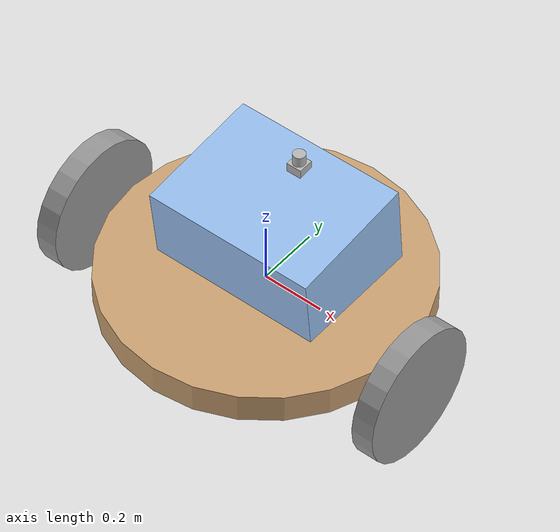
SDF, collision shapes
<?xml version='1.0'?>
<sdf version='1.7'>
  <model name='robot_draf'>
    <link name='caster_wheel'>
      <inertial>
        <mass>2</mass>
        <inertia>
          <ixx>0.00197836</ixx>
          <ixy>0</ixy>
          <ixz>0</ixz>
          <iyy>0.00197836</iyy>
          <iyz>0</iyz>
          <izz>0.00361478</izz>
        </inertia>
        <pose>0 0 0 0 -0 0</pose>
      </inertial>
      <pose>0.001456 0.474958 -0.113119 -3.13968 1.57079 -3.13968</pose>
      <self_collide>0</self_collide>
      <enable_wind>0</enable_wind>
      <kinematic>0</kinematic>
      <gravity>1</gravity>
      <visual name='visual'>
        <pose>0 0 0 0 -0 0</pose>
        <geometry>
          <cylinder>
            <radius>0.0601226</radius>
            <length>0.0320289</length>
          </cylinder>
        </geometry>
        <material>
          <lighting>1</lighting>
          <script>
            <uri>file://media/materials/scripts/gazebo.material</uri>
            <name>Gazebo/Grey</name>
          </script>
          <shader type='pixel'>
            <normal_map>__default__</normal_map>
          </shader>
          <ambient>0.3 0.3 0.3 1</ambient>
          <diffuse>0.7 0.7 0.7 1</diffuse>
          <specular>0.01 0.01 0.01 1</specular>
          <emissive>0 0 0 1</emissive>
        </material>
        <transparency>0</transparency>
        <cast_shadows>1</cast_shadows>
      </visual>
      <collision name='collision'>
        <laser_retro>0</laser_retro>
        <max_contacts>10</max_contacts>
        <pose>0 0 0 0 -0 0</pose>
        <geometry>
          <cylinder>
            <radius>0.060123</radius>
            <length>0.032029</length>
          </cylinder>
        </geometry>
        <surface>
          <friction>
            <ode>
              <mu>1</mu>
              <mu2>1</mu2>
              <fdir1>0 0 0</fdir1>
              <slip1>0</slip1>
              <slip2>0</slip2>
            </ode>
            <torsional>
              <coefficient>1</coefficient>
              <patch_radius>0</patch_radius>
              <surface_radius>0</surface_radius>
              <use_patch_radius>1</use_patch_radius>
              <ode>
                <slip>0</slip>
              </ode>
            </torsional>
          </friction>
          <bounce>
            <restitution_coefficient>0</restitution_coefficient>
            <threshold>1e+06</threshold>
          </bounce>
          <contact>
            <collide_without_contact>0</collide_without_contact>
            <collide_without_contact_bitmask>1</collide_without_contact_bitmask>
            <collide_bitmask>1</collide_bitmask>
            <ode>
              <soft_cfm>0</soft_cfm>
              <soft_erp>0.2</soft_erp>
              <kp>1e+13</kp>
              <kd>1</kd>
              <max_vel>0.01</max_vel>
              <min_depth>0</min_depth>
            </ode>
            <bullet>
              <split_impulse>1</split_impulse>
              <split_impulse_penetration_threshold>-0.01</split_impulse_penetration_threshold>
              <soft_cfm>0</soft_cfm>
              <soft_erp>0.2</soft_erp>
              <kp>1e+13</kp>
              <kd>1</kd>
            </bullet>
          </contact>
        </surface>
      </collision>
    </link>
    <link name='chassis'>
      <inertial>
        <mass>20</mass>
        <inertia>
          <ixx>1.26558</ixx>
          <ixy>0</ixy>
          <ixz>0</ixz>
          <iyy>1.26558</iyy>
          <iyz>0</iyz>
          <izz>2.5</izz>
        </inertia>
        <pose>0 0 0 0 -0 0</pose>
      </inertial>
      <pose>0 0 0 0 -0 0</pose>
      <gravity>1</gravity>
      <self_collide>0</self_collide>
      <kinematic>0</kinematic>
      <enable_wind>0</enable_wind>
      <visual name='visual'>
        <pose>0 0 0 0 -0 0</pose>
        <geometry>
          <cylinder>
            <radius>0.5</radius>
            <length>0.0966706</length>
          </cylinder>
        </geometry>
        <material>
          <lighting>1</lighting>
          <script>
            <uri>file://media/materials/scripts/gazebo.material</uri>
            <name>Gazebo/Grey</name>
          </script>
          <shader type='pixel'>
            <normal_map>__default__</normal_map>
          </shader>
          <ambient>0.8 0.64 0.45 1</ambient>
          <diffuse>0.7 0.7 0.7 1</diffuse>
          <specular>0.01 0.01 0.01 1</specular>
          <emissive>0 0 0 1</emissive>
        </material>
        <transparency>0</transparency>
        <cast_shadows>1</cast_shadows>
      </visual>
      <collision name='collision'>
        <laser_retro>0</laser_retro>
        <max_contacts>10</max_contacts>
        <pose>0 0 0 0 -0 0</pose>
        <geometry>
          <cylinder>
            <radius>0.5</radius>
            <length>0.096671</length>
          </cylinder>
        </geometry>
        <surface>
          <friction>
            <ode>
              <mu>1</mu>
              <mu2>1</mu2>
              <fdir1>0 0 0</fdir1>
              <slip1>0</slip1>
              <slip2>0</slip2>
            </ode>
            <torsional>
              <coefficient>1</coefficient>
              <patch_radius>0</patch_radius>
              <surface_radius>0</surface_radius>
              <use_patch_radius>1</use_patch_radius>
              <ode>
                <slip>0</slip>
              </ode>
            </torsional>
          </friction>
          <bounce>
            <restitution_coefficient>0</restitution_coefficient>
            <threshold>1e+06</threshold>
          </bounce>
          <contact>
            <collide_without_contact>0</collide_without_contact>
            <collide_without_contact_bitmask>1</collide_without_contact_bitmask>
            <collide_bitmask>1</collide_bitmask>
            <ode>
              <soft_cfm>0</soft_cfm>
              <soft_erp>0.2</soft_erp>
              <kp>1e+13</kp>
              <kd>1</kd>
              <max_vel>0.01</max_vel>
              <min_depth>0</min_depth>
            </ode>
            <bullet>
              <split_impulse>1</split_impulse>
              <split_impulse_penetration_threshold>-0.01</split_impulse_penetration_threshold>
              <soft_cfm>0</soft_cfm>
              <soft_erp>0.2</soft_erp>
              <kp>1e+13</kp>
              <kd>1</kd>
            </bullet>
          </contact>
        </surface>
      </collision>
    </link>
    <link name='left_wheel'>
      <inertial>
        <mass>1.5</mass>
        <inertia>
          <ixx>0.0181364</ixx>
          <ixy>0</ixy>
          <ixz>0</ixz>
          <iyy>0.0181364</iyy>
          <iyz>0</iyz>
          <izz>0.0349969</izz>
        </inertia>
        <pose>0 0 0 0 -0 0</pose>
      </inertial>
      <pose>-0.58 -0.08 0 -3.13968 1.57079 -3.13968</pose>
      <self_collide>0</self_collide>
      <enable_wind>0</enable_wind>
      <kinematic>0</kinematic>
      <gravity>1</gravity>
      <visual name='visual'>
        <pose>0 0 0 0 -0 0</pose>
        <geometry>
          <cylinder>
            <radius>0.216015</radius>
            <length>0.071441</length>
          </cylinder>
        </geometry>
        <material>
          <lighting>1</lighting>
          <script>
            <uri>file://media/materials/scripts/gazebo.material</uri>
            <name>Gazebo/Grey</name>
          </script>
          <shader type='pixel'>
            <normal_map>__default__</normal_map>
          </shader>
          <ambient>0.3 0.3 0.3 1</ambient>
          <diffuse>0.7 0.7 0.7 1</diffuse>
          <specular>0.01 0.01 0.01 1</specular>
          <emissive>0 0 0 1</emissive>
        </material>
        <transparency>0</transparency>
        <cast_shadows>1</cast_shadows>
      </visual>
      <collision name='collision'>
        <laser_retro>0</laser_retro>
        <max_contacts>10</max_contacts>
        <pose>0 0 0 0 -0 0</pose>
        <geometry>
          <cylinder>
            <radius>0.216015</radius>
            <length>0.071441</length>
          </cylinder>
        </geometry>
        <surface>
          <friction>
            <ode>
              <mu>1</mu>
              <mu2>1</mu2>
              <fdir1>0 0 0</fdir1>
              <slip1>0</slip1>
              <slip2>0</slip2>
            </ode>
            <torsional>
              <coefficient>1</coefficient>
              <patch_radius>0</patch_radius>
              <surface_radius>0</surface_radius>
              <use_patch_radius>1</use_patch_radius>
              <ode>
                <slip>0</slip>
              </ode>
            </torsional>
          </friction>
          <bounce>
            <restitution_coefficient>0</restitution_coefficient>
            <threshold>1e+06</threshold>
          </bounce>
          <contact>
            <collide_without_contact>0</collide_without_contact>
            <collide_without_contact_bitmask>1</collide_without_contact_bitmask>
            <collide_bitmask>1</collide_bitmask>
            <ode>
              <soft_cfm>0</soft_cfm>
              <soft_erp>0.2</soft_erp>
              <kp>1e+13</kp>
              <kd>1</kd>
              <max_vel>0.01</max_vel>
              <min_depth>0</min_depth>
            </ode>
            <bullet>
              <split_impulse>1</split_impulse>
              <split_impulse_penetration_threshold>-0.01</split_impulse_penetration_threshold>
              <soft_cfm>0</soft_cfm>
              <soft_erp>0.2</soft_erp>
              <kp>1e+13</kp>
              <kd>1</kd>
            </bullet>
          </contact>
        </surface>
      </collision>
    </link>
    <link name='link_0'>
      <inertial>
        <mass>0.0730977</mass>
        <inertia>
          <ixx>0.00165817</ixx>
          <ixy>0</ixy>
          <ixz>0</ixz>
          <iyy>0.002517</iyy>
          <iyz>0</iyz>
          <izz>0.00299551</izz>
        </inertia>
        <pose>0 0 0 0 -0 0</pose>
      </inertial>
      <pose>0 0.05 0.16 0.105797 -0.000159 0.001472</pose>
      <self_collide>0</self_collide>
      <enable_wind>0</enable_wind>
      <kinematic>0</kinematic>
      <gravity>1</gravity>
      <visual name='visual'>
        <pose>0 0 0 0 -0 0</pose>
        <geometry>
          <box>
            <size>0.562469 0.418787 0.311174</size>
          </box>
        </geometry>
        <material>
          <lighting>1</lighting>
          <script>
            <uri>file://media/materials/scripts/gazebo.material</uri>
            <name>Gazebo/Grey</name>
          </script>
          <shader type='pixel'>
            <normal_map>__default__</normal_map>
          </shader>
          <emissive>0.6 0.757 0.945 1</emissive>
          <ambient>0.6 0.757 0.945 1</ambient>
          <diffuse>0.6 0.757 0.945 1</diffuse>
          <specular>0.6 0.757 0.945 1</specular>
        </material>
        <transparency>0</transparency>
        <cast_shadows>1</cast_shadows>
      </visual>
      <collision name='collision'>
        <laser_retro>0</laser_retro>
        <max_contacts>10</max_contacts>
        <pose>0 0 0 0 -0 0</pose>
        <geometry>
          <box>
            <size>0.562469 0.418787 0.311174</size>
          </box>
        </geometry>
        <surface>
          <friction>
            <ode>
              <mu>1</mu>
              <mu2>1</mu2>
              <fdir1>0 0 0</fdir1>
              <slip1>0</slip1>
              <slip2>0</slip2>
            </ode>
            <torsional>
              <coefficient>1</coefficient>
              <patch_radius>0</patch_radius>
              <surface_radius>0</surface_radius>
              <use_patch_radius>1</use_patch_radius>
              <ode>
                <slip>0</slip>
              </ode>
            </torsional>
          </friction>
          <bounce>
            <restitution_coefficient>0</restitution_coefficient>
            <threshold>1e+06</threshold>
          </bounce>
          <contact>
            <collide_without_contact>0</collide_without_contact>
            <collide_without_contact_bitmask>1</collide_without_contact_bitmask>
            <collide_bitmask>1</collide_bitmask>
            <ode>
              <soft_cfm>0</soft_cfm>
              <soft_erp>0.2</soft_erp>
              <kp>1e+13</kp>
              <kd>1</kd>
              <max_vel>0.01</max_vel>
              <min_depth>0</min_depth>
            </ode>
            <bullet>
              <split_impulse>1</split_impulse>
              <split_impulse_penetration_threshold>-0.01</split_impulse_penetration_threshold>
              <soft_cfm>0</soft_cfm>
              <soft_erp>0.2</soft_erp>
              <kp>1e+13</kp>
              <kd>1</kd>
            </bullet>
          </contact>
        </surface>
      </collision>
    </link>
    <link name='right_wheel'>
      <inertial>
        <mass>1.5</mass>
        <inertia>
          <ixx>0.0181364</ixx>
          <ixy>0</ixy>
          <ixz>0</ixz>
          <iyy>0.0181364</iyy>
          <iyz>0</iyz>
          <izz>0.0349969</izz>
        </inertia>
        <pose>0 0 0 0 -0 0</pose>
      </inertial>
      <pose>0.58 -0.08 -0 -3.13968 1.57079 -3.13968</pose>
      <self_collide>0</self_collide>
      <enable_wind>0</enable_wind>
      <kinematic>0</kinematic>
      <gravity>1</gravity>
      <visual name='visual'>
        <pose>0 0 0 0 -0 0</pose>
        <geometry>
          <cylinder>
            <radius>0.216015</radius>
            <length>0.071441</length>
          </cylinder>
        </geometry>
        <material>
          <lighting>1</lighting>
          <script>
            <uri>file://media/materials/scripts/gazebo.material</uri>
            <name>Gazebo/Grey</name>
          </script>
          <shader type='pixel'>
            <normal_map>__default__</normal_map>
          </shader>
          <ambient>0.3 0.3 0.3 1</ambient>
          <diffuse>0.7 0.7 0.7 1</diffuse>
          <specular>0.01 0.01 0.01 1</specular>
          <emissive>0 0 0 1</emissive>
        </material>
        <transparency>0</transparency>
        <cast_shadows>1</cast_shadows>
      </visual>
      <collision name='collision'>
        <laser_retro>0</laser_retro>
        <max_contacts>10</max_contacts>
        <pose>0 0 0 0 -0 0</pose>
        <geometry>
          <cylinder>
            <radius>0.216015</radius>
            <length>0.071441</length>
          </cylinder>
        </geometry>
        <surface>
          <friction>
            <ode>
              <mu>1</mu>
              <mu2>1</mu2>
              <fdir1>0 0 0</fdir1>
              <slip1>0</slip1>
              <slip2>0</slip2>
            </ode>
            <torsional>
              <coefficient>1</coefficient>
              <patch_radius>0</patch_radius>
              <surface_radius>0</surface_radius>
              <use_patch_radius>1</use_patch_radius>
              <ode>
                <slip>0</slip>
              </ode>
            </torsional>
          </friction>
          <bounce>
            <restitution_coefficient>0</restitution_coefficient>
            <threshold>1e+06</threshold>
          </bounce>
          <contact>
            <collide_without_contact>0</collide_without_contact>
            <collide_without_contact_bitmask>1</collide_without_contact_bitmask>
            <collide_bitmask>1</collide_bitmask>
            <ode>
              <soft_cfm>0</soft_cfm>
              <soft_erp>0.2</soft_erp>
              <kp>1e+13</kp>
              <kd>1</kd>
              <max_vel>0.01</max_vel>
              <min_depth>0</min_depth>
            </ode>
            <bullet>
              <split_impulse>1</split_impulse>
              <split_impulse_penetration_threshold>-0.01</split_impulse_penetration_threshold>
              <soft_cfm>0</soft_cfm>
              <soft_erp>0.2</soft_erp>
              <kp>1e+13</kp>
              <kd>1</kd>
            </bullet>
          </contact>
        </surface>
      </collision>
    </link>
    <model name='lidar_2d_0'>
      <link name='laser_frame'>
        <pose>0 0 0 0 -0 0</pose>
        <inertial>
          <pose>0 0 0.035003 0 -0 0</pose>
          <mass>0.13</mass>
          <inertia>
            <ixx>8.01874e-05</ixx>
            <ixy>0</ixy>
            <ixz>0</ixz>
            <iyy>8.01874e-05</iyy>
            <iyz>0</iyz>
            <izz>5.41897e-05</izz>
          </inertia>
        </inertial>
        <sensor name='laser' type='ray'>
          <pose>0 0 0.052505 0 -0 0</pose>
          <ray>
            <scan>
              <horizontal>
                <samples>540</samples>
                <resolution>1</resolution>
                <min_angle>-2.3562</min_angle>
                <max_angle>2.3562</max_angle>
              </horizontal>
              <vertical>
                <samples>1</samples>
                <min_angle>0</min_angle>
                <max_angle>0</max_angle>
              </vertical>
            </scan>
            <range>
              <min>0.06</min>
              <max>5</max>
              <resolution>0.01</resolution>
            </range>
            <noise>
              <type>gaussian</type>
              <mean>0</mean>
              <stddev>0.001</stddev>
            </noise>
          </ray>
          <always_on>0</always_on>
          <update_rate>30</update_rate>
          <visualize>1</visualize>
        </sensor>
        <self_collide>0</self_collide>
        <enable_wind>0</enable_wind>
        <kinematic>0</kinematic>
        <visual name='visual'>
          <pose>0 0 0 0 -0 1.5707</pose>
          <geometry>
            <mesh>
              <uri>https://fuel.ignitionrobotics.org/1.0/khulqu15/models/lidar 2d v1/1/files/meshes/lidar_2d_v1.dae</uri>
            </mesh>
          </geometry>
          <material>
            <shader type='pixel'/>
          </material>
          <transparency>0</transparency>
          <cast_shadows>1</cast_shadows>
        </visual>
        <collision name='collision_base'>
          <laser_retro>0</laser_retro>
          <max_contacts>10</max_contacts>
          <pose>0 0 0.017502 0 -0 0</pose>
          <geometry>
            <box>
              <size>0.050011 0.050011 0.035003</size>
            </box>
          </geometry>
          <surface>
            <friction>
              <ode>
                <mu>1</mu>
                <mu2>1</mu2>
                <fdir1>0 0 0</fdir1>
                <slip1>0</slip1>
                <slip2>0</slip2>
              </ode>
              <torsional>
                <coefficient>1</coefficient>
                <patch_radius>0</patch_radius>
                <surface_radius>0</surface_radius>
                <use_patch_radius>1</use_patch_radius>
                <ode>
                  <slip>0</slip>
                </ode>
              </torsional>
            </friction>
            <bounce>
              <restitution_coefficient>0</restitution_coefficient>
              <threshold>1e+06</threshold>
            </bounce>
            <contact>
              <collide_without_contact>0</collide_without_contact>
              <collide_without_contact_bitmask>1</collide_without_contact_bitmask>
              <collide_bitmask>1</collide_bitmask>
              <ode>
                <soft_cfm>0</soft_cfm>
                <soft_erp>0.2</soft_erp>
                <kp>1e+13</kp>
                <kd>1</kd>
                <max_vel>0.01</max_vel>
                <min_depth>0</min_depth>
              </ode>
              <bullet>
                <split_impulse>1</split_impulse>
                <split_impulse_penetration_threshold>-0.01</split_impulse_penetration_threshold>
                <soft_cfm>0</soft_cfm>
                <soft_erp>0.2</soft_erp>
                <kp>1e+13</kp>
                <kd>1</kd>
              </bullet>
            </contact>
          </surface>
        </collision>
        <collision name='collision_top'>
          <laser_retro>0</laser_retro>
          <max_contacts>10</max_contacts>
          <pose>0 0 0.052505 0 -0 0</pose>
          <geometry>
            <cylinder>
              <radius>0.02</radius>
              <length>0.035003</length>
            </cylinder>
          </geometry>
          <surface>
            <friction>
              <ode>
                <mu>1</mu>
                <mu2>1</mu2>
                <fdir1>0 0 0</fdir1>
                <slip1>0</slip1>
                <slip2>0</slip2>
              </ode>
              <torsional>
                <coefficient>1</coefficient>
                <patch_radius>0</patch_radius>
                <surface_radius>0</surface_radius>
                <use_patch_radius>1</use_patch_radius>
                <ode>
                  <slip>0</slip>
                </ode>
              </torsional>
            </friction>
            <bounce>
              <restitution_coefficient>0</restitution_coefficient>
              <threshold>1e+06</threshold>
            </bounce>
            <contact>
              <collide_without_contact>0</collide_without_contact>
              <collide_without_contact_bitmask>1</collide_without_contact_bitmask>
              <collide_bitmask>1</collide_bitmask>
              <ode>
                <soft_cfm>0</soft_cfm>
                <soft_erp>0.2</soft_erp>
                <kp>1e+13</kp>
                <kd>1</kd>
                <max_vel>0.01</max_vel>
                <min_depth>0</min_depth>
              </ode>
              <bullet>
                <split_impulse>1</split_impulse>
                <split_impulse_penetration_threshold>-0.01</split_impulse_penetration_threshold>
                <soft_cfm>0</soft_cfm>
                <soft_erp>0.2</soft_erp>
                <kp>1e+13</kp>
                <kd>1</kd>
              </bullet>
            </contact>
          </surface>
        </collision>
      </link>
      <static>0</static>
      <allow_auto_disable>1</allow_auto_disable>
      <pose>0.001533 0.145676 0.31898 0 -0 0</pose>
    </model>
    <joint name='caster_wheel_joint' type='revolute'>
      <parent>chassis</parent>
      <child>caster_wheel</child>
      <pose>0 0 0 0 -0 0</pose>
      <axis>
        <xyz>0 0 -1</xyz>
        <limit>
          <lower>-1.79769e+308</lower>
          <upper>1.79769e+308</upper>
          <effort>-1</effort>
          <velocity>-1</velocity>
        </limit>
        <dynamics>
          <spring_reference>0</spring_reference>
          <spring_stiffness>0</spring_stiffness>
          <damping>0</damping>
          <friction>0</friction>
        </dynamics>
      </axis>
      <physics>
        <ode>
          <limit>
            <cfm>0</cfm>
            <erp>0.2</erp>
          </limit>
          <suspension>
            <cfm>0</cfm>
            <erp>0.2</erp>
          </suspension>
        </ode>
      </physics>
    </joint>
    <joint name='left_wheel_joint' type='revolute'>
      <parent>chassis</parent>
      <child>left_wheel</child>
      <pose>0 0 0 0 -0 0</pose>
      <axis>
        <xyz>0 0 -1</xyz>
        <limit>
          <lower>-1.79769e+308</lower>
          <upper>1.79769e+308</upper>
          <effort>-1</effort>
          <velocity>-1</velocity>
        </limit>
        <dynamics>
          <spring_reference>0</spring_reference>
          <spring_stiffness>0</spring_stiffness>
          <damping>0</damping>
          <friction>0</friction>
        </dynamics>
      </axis>
      <physics>
        <ode>
          <limit>
            <cfm>0</cfm>
            <erp>0.2</erp>
          </limit>
          <suspension>
            <cfm>0</cfm>
            <erp>0.2</erp>
          </suspension>
        </ode>
      </physics>
    </joint>
    <joint name='link_0_JOINT_1' type='fixed'>
      <parent>chassis</parent>
      <child>link_0</child>
      <pose>0 0 0 0 -0 0</pose>
      <physics>
        <ode>
          <limit>
            <cfm>0</cfm>
            <erp>0.2</erp>
          </limit>
          <suspension>
            <cfm>0</cfm>
            <erp>0.2</erp>
          </suspension>
        </ode>
      </physics>
    </joint>
    <joint name='link_0_JOINT_2' type='fixed'>
      <parent>link_0</parent>
      <child>lidar_2d_0::laser_frame</child>
      <pose>0 0 0 0 -0 0</pose>
      <physics>
        <ode>
          <limit>
            <cfm>0</cfm>
            <erp>0.2</erp>
          </limit>
          <suspension>
            <cfm>0</cfm>
            <erp>0.2</erp>
          </suspension>
        </ode>
      </physics>
    </joint>
    <joint name='right_wheel_joint' type='revolute'>
      <parent>chassis</parent>
      <child>right_wheel</child>
      <pose>0 0 0 0 -0 0</pose>
      <axis>
        <xyz>0 0 -1</xyz>
        <limit>
          <lower>-1.79769e+308</lower>
          <upper>1.79769e+308</upper>
          <effort>-1</effort>
          <velocity>-1</velocity>
        </limit>
        <dynamics>
          <spring_reference>0</spring_reference>
          <spring_stiffness>0</spring_stiffness>
          <damping>0</damping>
          <friction>0</friction>
        </dynamics>
      </axis>
      <physics>
        <ode>
          <limit>
            <cfm>0</cfm>
            <erp>0.2</erp>
          </limit>
          <suspension>
            <cfm>0</cfm>
            <erp>0.2</erp>
          </suspension>
        </ode>
      </physics>
    </joint>
    <static>0</static>
    <allow_auto_disable>1</allow_auto_disable>
    <plugin name='wheel_velocity_setter' filename='libwheel_velocity_setter.so'/>
  </model>
</sdf>
